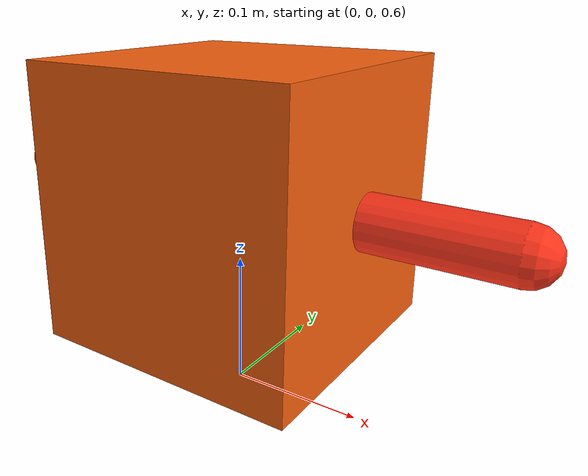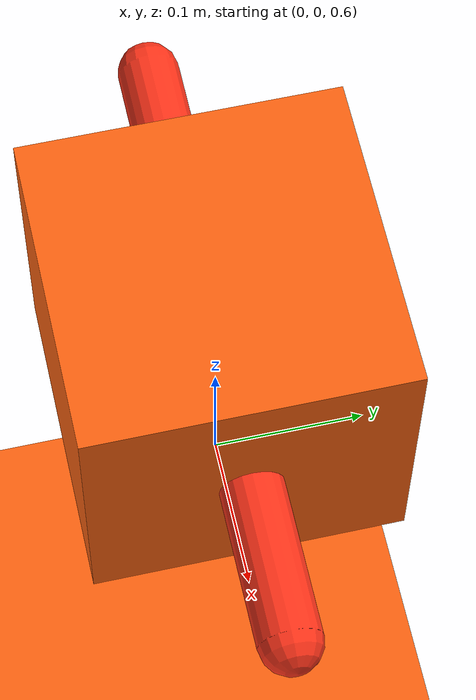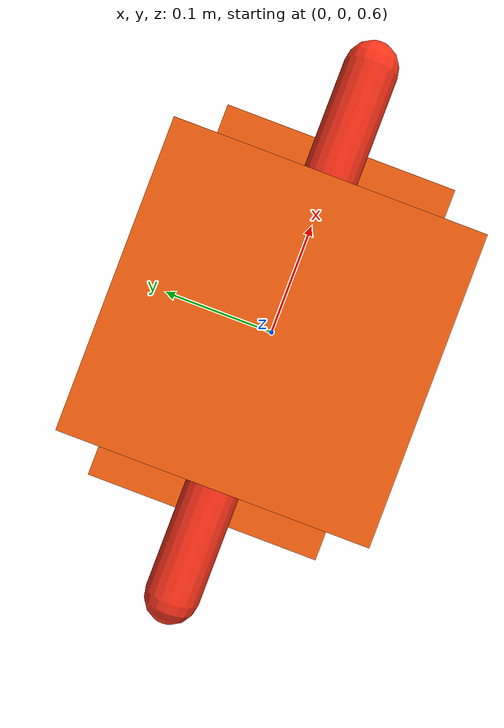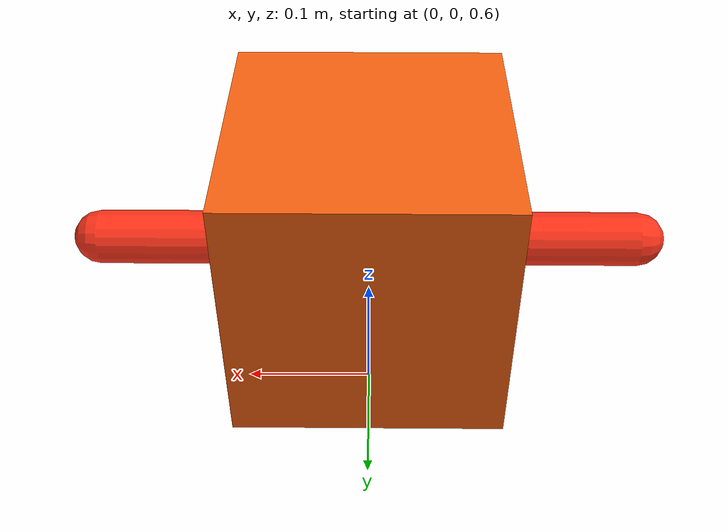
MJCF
<mujoco model="ant">
	<custom>
		<numeric data="0.0 0.0 0.55 1.0 0.0 0.0 0.0 0.0 1.0 0.0 -1.0 0.0 -1.0 0.0 1.0" name="init_qpos"/>
	</custom>

	<default>
		<joint armature="0.01" damping="0.1" limited="true"/>
		<geom condim="3" density="5.0" friction="1.5 0.1 0.1" margin="0.01" rgba="0.97 0.38 0.06 1"/>
	</default>

	<compiler inertiafromgeom="true" angle="degree"/>

	<option timestep="0.016" iterations="50" tolerance="1e-10" solver="Newton" jacobian="dense" cone="pyramidal"/>

	<size nconmax="50" njmax="200" nstack="10000"/>
	<visual>
			<map force="0.1" zfar="30"/>
			<rgba haze="0.15 0.25 0.35 1"/>
			<quality shadowsize="2048"/>
			<global offwidth="800" offheight="800"/>
	</visual>

	<asset>
			<texture type="skybox" builtin="gradient" rgb1="0.3 0.5 0.7" rgb2="0 0 0" width="512" height="512"/>
			<texture name="texplane" type="2d" builtin="checker" rgb1=".2 .3 .4" rgb2=".1 0.15 0.2" width="512" height="512" mark="cross" markrgb=".8 .8 .8"/>
			<texture name="texgeom" type="cube" builtin="flat" mark="cross" width="127" height="1278"
					rgb1="0.8 0.6 0.4" rgb2="0.8 0.6 0.4" markrgb="1 1 1" random="0.01"/>

			<material name="matplane" reflectance="0.3" texture="texplane" texrepeat="1 1" texuniform="true"/>
			<material name="matgeom" texture="texgeom" texuniform="true" rgba="0.8 0.6 .4 1"/>
	</asset>

	<worldbody>
		<geom name="floor" pos="0 0 0" size="0 0 .25" type="plane" material="matplane" condim="3"/>

		<light directional="false" diffuse=".2 .2 .2" specular="0 0 0" pos="0 0 5" dir="0 0 -1" castshadow="false"/>
		<light mode="targetbodycom" target="torso" directional="false" diffuse=".8 .8 .8" specular="0.3 0.3 0.3" pos="0 0 4.0" dir="0 0 -1"/>

		<body name="torso" pos="0 0 0.75" friction="1 0.005 0.0001">
			<freejoint name="root"/>
			<geom name="torso_geom" pos="0 0 0" size="0.1 0.1 0.1" type="box"/>
			<body name="front_leg" pos="0.15 0 0">
				<joint axis="0 0 1" name="hip_1" pos="0.0 0.0 0.0" range="0 0" type="hinge"/>
				<geom fromto="-0.05 0.0 0.0 0.05 0 0.0" name="left_leg_geom" size="0.02" type="capsule" rgba=".999 .2 .1 1"/>
			</body>
			<body name="back_leg" pos="-0.15 0 0">
				<joint axis="0 0 1" name="hip_1" pos="0.0 0.0 0.0" range="0 0" type="hinge"/>
				<geom fromto="-0.05 0.0 0.0 0.05 0 0.0" name="left_leg_geom" size="0.02" type="capsule" rgba=".999 .2 .1 1"/>
			</body>
		</body>
	</worldbody>

</mujoco>
